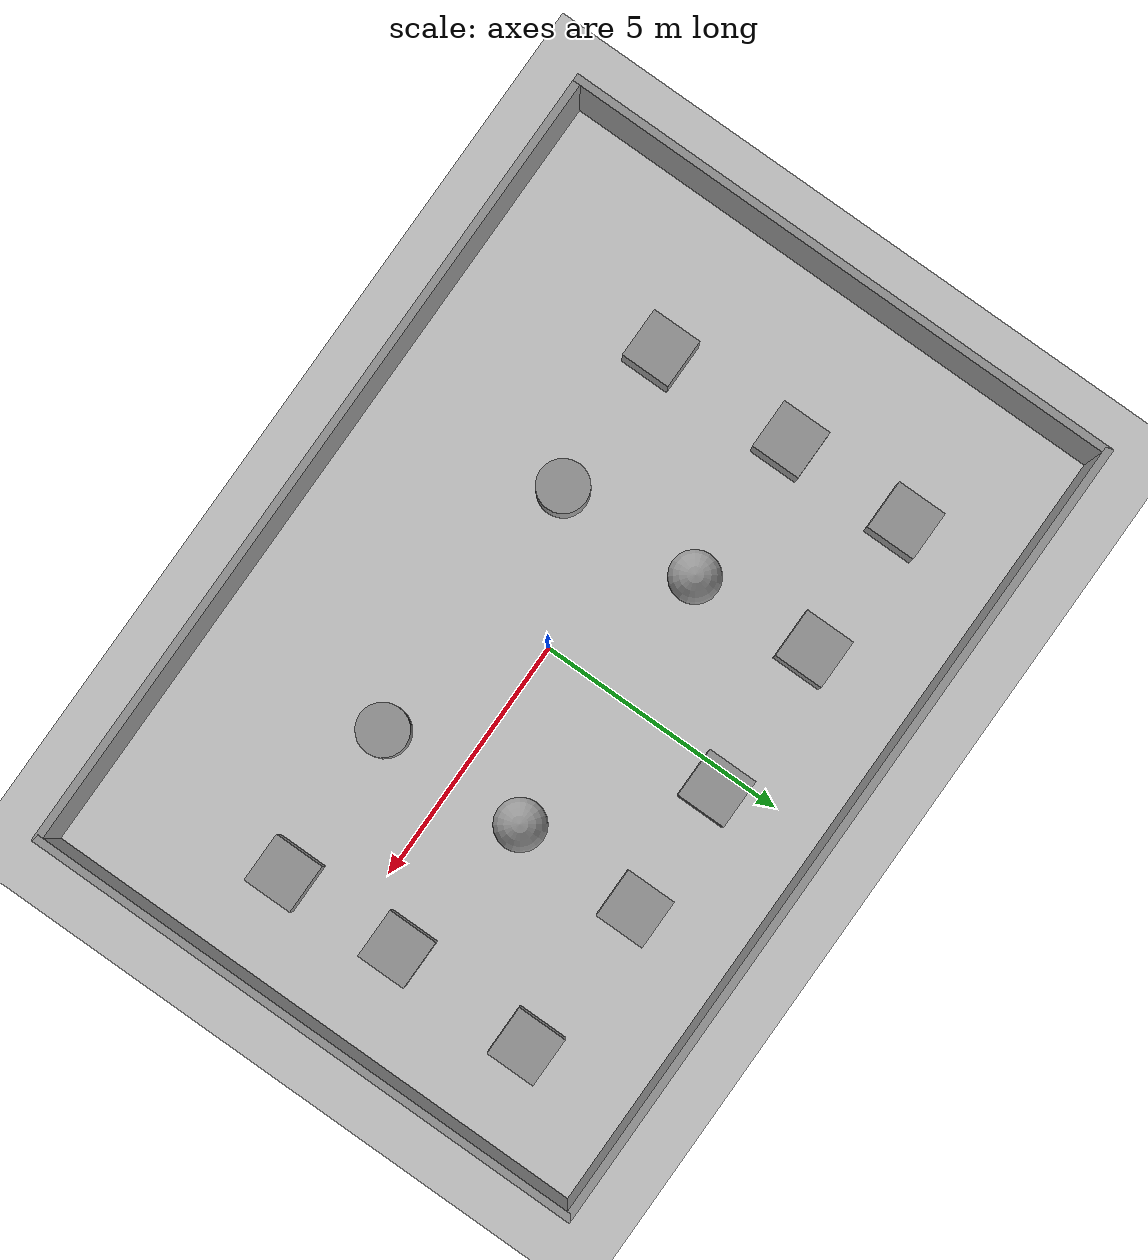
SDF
<sdf version="1.7">
 <world name="default">
  <light name="sun" type="directional">
   <pose>0 0 10 0 -0 0</pose>
   <diffuse>0.8 0.8 0.8 1</diffuse>
   <specular>0.2 0.2 0.2 1</specular>
   <attenuation>
    <range>1000</range>
    <constant>0.9</constant>
    <linear>0.01</linear>
    <quadratic>0.001</quadratic>
   </attenuation>
   <direction>-0.5 0.1 -0.9</direction>
   <spot><inner_angle>0</inner_angle><outer_angle>0</outer_angle><falloff>0</falloff></spot>
  </light>
  <model name="ground_plane">
   <static>1</static>
   <link name="link">
    <collision name="collision">
     <geometry><plane><normal>0 0 1</normal><size>100 100</size></plane></geometry>
     <surface>
      <contact><collide_bitmask>65535</collide_bitmask></contact>
      <friction><ode><mu>100</mu><mu2>50</mu2></ode></friction>
     </surface>
    </collision>
    <visual name="visual">
     <cast_shadows>0</cast_shadows>
     <geometry><plane><normal>0 0 1</normal><size>100 100</size></plane></geometry>
     <material>
      <script><uri>file://media/materials/scripts/gazebo.material</uri><name>Gazebo/Grey</name></script>
     </material>
    </visual>
   </link>
  </model>
  <gravity>0 0 -9.8</gravity>
  <magnetic_field>6e-06 2.3e-05 -4.2e-05</magnetic_field>
  <atmosphere type="adiabatic"/>
  <physics type="ode">
   <max_step_size>0.001</max_step_size>
   <real_time_factor>1</real_time_factor>
   <real_time_update_rate>1000</real_time_update_rate>
  </physics>
  <scene><ambient>0.4 0.4 0.4 1</ambient><background>0.7 0.7 0.7 1</background><shadows>1</shadows></scene>
  <audio><device>default</device></audio>
  <spherical_coordinates>
   <surface_model>EARTH_WGS84</surface_model>
   <latitude_deg>0</latitude_deg>
   <longitude_deg>0</longitude_deg>
   <elevation>0</elevation>
   <heading_deg>0</heading_deg>
  </spherical_coordinates>
  <model name="test">
   <pose>-0.20985 0.39088 0 0 -0 0</pose>
   <link name="Wall_10">
    <collision name="Wall_10_Collision">
     <geometry><box><size>16.5 0.15 2.5</size></box></geometry>
     <pose>0 0 1.25 0 -0 0</pose>
    </collision>
    <visual name="Wall_10_Visual">
     <pose>0 0 1.25 0 -0 0</pose>
     <geometry><box><size>16.5 0.15 2.5</size></box></geometry>
     <material>
      <script><uri>file://media/materials/scripts/gazebo.material</uri><name>Gazebo/Grey</name></script>
      <ambient>1 1 1 1</ambient>
     </material>
     <meta><layer>0</layer></meta>
    </visual>
    <pose>0 5.675 0 0 -0 3.14159</pose>
   </link>
   <link name="Wall_11">
    <collision name="Wall_11_Collision">
     <geometry><box><size>11.5 0.15 2.5</size></box></geometry>
     <pose>0 0 1.25 0 -0 0</pose>
    </collision>
    <visual name="Wall_11_Visual">
     <pose>0 0 1.25 0 -0 0</pose>
     <geometry><box><size>11.5 0.15 2.5</size></box></geometry>
     <material>
      <script><uri>file://media/materials/scripts/gazebo.material</uri><name>Gazebo/Grey</name></script>
      <ambient>1 1 1 1</ambient>
     </material>
     <meta><layer>0</layer></meta>
    </visual>
    <pose>-8.175 0 0 0 -0 -1.5708</pose>
   </link>
   <link name="Wall_8">
    <collision name="Wall_8_Collision">
     <geometry><box><size>16.5 0.15 2.5</size></box></geometry>
     <pose>0 0 1.25 0 -0 0</pose>
    </collision>
    <visual name="Wall_8_Visual">
     <pose>0 0 1.25 0 -0 0</pose>
     <geometry><box><size>16.5 0.15 2.5</size></box></geometry>
     <material>
      <script><uri>file://media/materials/scripts/gazebo.material</uri><name>Gazebo/Grey</name></script>
      <ambient>1 1 1 1</ambient>
     </material>
     <meta><layer>0</layer></meta>
    </visual>
    <pose>0 -5.675 0 0 -0 0</pose>
   </link>
   <link name="Wall_9">
    <collision name="Wall_9_Collision">
     <geometry><box><size>11.5 0.15 2.5</size></box></geometry>
     <pose>0 0 1.25 0 -0 0</pose>
    </collision>
    <visual name="Wall_9_Visual">
     <pose>0 0 1.25 0 -0 0</pose>
     <geometry><box><size>11.5 0.15 2.5</size></box></geometry>
     <material>
      <script><uri>file://media/materials/scripts/gazebo.material</uri><name>Gazebo/Grey</name></script>
      <ambient>1 1 1 1</ambient>
     </material>
     <meta><layer>0</layer></meta>
    </visual>
    <pose>8.175 0 0 0 -0 1.5708</pose>
   </link>
   <static>1</static>
  </model>
  <model name="unit_box">
   <pose>-5.51687 3.9165 0.499995 0 1e-05 0</pose>
   <link name="link">
    <inertial>
     <mass>1</mass>
     <inertia>
      <ixx>0.166667</ixx>
      <ixy>0</ixy>
      <ixz>0</ixz>
      <iyy>0.166667</iyy>
      <iyz>0</iyz>
      <izz>0.166667</izz>
     </inertia>
    </inertial>
    <collision name="collision"><geometry><box><size>1 1 1</size></box></geometry></collision>
    <visual name="visual">
     <geometry><box><size>1 1 1</size></box></geometry>
     <material>
      <script><name>Gazebo/Grey</name><uri>file://media/materials/scripts/gazebo.material</uri></script>
     </material>
    </visual>
   </link>
  </model>
  <model name="unit_box_0">
   <pose>-2.69166 3.89853 0.499995 -1e-05 -0 -0</pose>
   <link name="link">
    <inertial>
     <mass>1</mass>
     <inertia>
      <ixx>0.166667</ixx>
      <ixy>0</ixy>
      <ixz>0</ixz>
      <iyy>0.166667</iyy>
      <iyz>0</iyz>
      <izz>0.166667</izz>
     </inertia>
    </inertial>
    <collision name="collision"><geometry><box><size>1 1 1</size></box></geometry></collision>
    <visual name="visual">
     <geometry><box><size>1 1 1</size></box></geometry>
     <material>
      <script><name>Gazebo/Grey</name><uri>file://media/materials/scripts/gazebo.material</uri></script>
     </material>
    </visual>
   </link>
  </model>
  <model name="unit_box_1">
   <pose>0.346888 3.91183 0.499995 0 1e-05 0</pose>
   <link name="link">
    <inertial>
     <mass>1</mass>
     <inertia>
      <ixx>0.166667</ixx>
      <ixy>0</ixy>
      <ixz>0</ixz>
      <iyy>0.166667</iyy>
      <iyz>0</iyz>
      <izz>0.166667</izz>
     </inertia>
    </inertial>
    <collision name="collision"><geometry><box><size>1 1 1</size></box></geometry></collision>
    <visual name="visual">
     <geometry><box><size>1 1 1</size></box></geometry>
     <material>
      <script><name>Gazebo/Grey</name><uri>file://media/materials/scripts/gazebo.material</uri></script>
     </material>
    </visual>
   </link>
  </model>
  <model name="unit_box_2">
   <pose>2.93791 3.96292 0.499995 -1e-05 -0 -0</pose>
   <link name="link">
    <inertial>
     <mass>1</mass>
     <inertia>
      <ixx>0.166667</ixx>
      <ixy>0</ixy>
      <ixz>0</ixz>
      <iyy>0.166667</iyy>
      <iyz>0</iyz>
      <izz>0.166667</izz>
     </inertia>
    </inertial>
    <collision name="collision"><geometry><box><size>1 1 1</size></box></geometry></collision>
    <visual name="visual">
     <geometry><box><size>1 1 1</size></box></geometry>
     <material>
      <script><name>Gazebo/Grey</name><uri>file://media/materials/scripts/gazebo.material</uri></script>
     </material>
    </visual>
   </link>
  </model>
  <model name="unit_box_3">
   <pose>6.05176 3.79122 0.499995 0 1e-05 0</pose>
   <link name="link">
    <inertial>
     <mass>1</mass>
     <inertia>
      <ixx>0.166667</ixx>
      <ixy>0</ixy>
      <ixz>0</ixz>
      <iyy>0.166667</iyy>
      <iyz>0</iyz>
      <izz>0.166667</izz>
     </inertia>
    </inertial>
    <collision name="collision"><geometry><box><size>1 1 1</size></box></geometry></collision>
    <visual name="visual">
     <geometry><box><size>1 1 1</size></box></geometry>
     <material>
      <script><name>Gazebo/Grey</name><uri>file://media/materials/scripts/gazebo.material</uri></script>
     </material>
    </visual>
   </link>
  </model>
  <model name="unit_box_4">
   <pose>-5.51886 1.39953 0.499995 -1e-05 -0 -0</pose>
   <link name="link">
    <inertial>
     <mass>1</mass>
     <inertia>
      <ixx>0.166667</ixx>
      <ixy>0</ixy>
      <ixz>0</ixz>
      <iyy>0.166667</iyy>
      <iyz>0</iyz>
      <izz>0.166667</izz>
     </inertia>
    </inertial>
    <collision name="collision"><geometry><box><size>1 1 1</size></box></geometry></collision>
    <visual name="visual">
     <geometry><box><size>1 1 1</size></box></geometry>
     <material>
      <script><name>Gazebo/Grey</name><uri>file://media/materials/scripts/gazebo.material</uri></script>
     </material>
    </visual>
   </link>
  </model>
  <model name="unit_box_5">
   <pose>-5.51189 -1.44401 0.499995 0 1e-05 0</pose>
   <link name="link">
    <inertial>
     <mass>1</mass>
     <inertia>
      <ixx>0.166667</ixx>
      <ixy>0</ixy>
      <ixz>0</ixz>
      <iyy>0.166667</iyy>
      <iyz>0</iyz>
      <izz>0.166667</izz>
     </inertia>
    </inertial>
    <collision name="collision"><geometry><box><size>1 1 1</size></box></geometry></collision>
    <visual name="visual">
     <geometry><box><size>1 1 1</size></box></geometry>
     <material>
      <script><name>Gazebo/Grey</name><uri>file://media/materials/scripts/gazebo.material</uri></script>
     </material>
    </visual>
   </link>
  </model>
  <model name="unit_box_6">
   <pose>5.97488 0.914149 0.499995 -1e-05 -0 -0</pose>
   <link name="link">
    <inertial>
     <mass>1</mass>
     <inertia>
      <ixx>0.166667</ixx>
      <ixy>0</ixy>
      <ixz>0</ixz>
      <iyy>0.166667</iyy>
      <iyz>0</iyz>
      <izz>0.166667</izz>
     </inertia>
    </inertial>
    <collision name="collision"><geometry><box><size>1 1 1</size></box></geometry></collision>
    <visual name="visual">
     <geometry><box><size>1 1 1</size></box></geometry>
     <material>
      <script><name>Gazebo/Grey</name><uri>file://media/materials/scripts/gazebo.material</uri></script>
     </material>
    </visual>
   </link>
  </model>
  <model name="unit_box_7">
   <pose>6.0411 -1.51909 0.499995 0 1e-05 0</pose>
   <link name="link">
    <inertial>
     <mass>1</mass>
     <inertia>
      <ixx>0.166667</ixx>
      <ixy>0</ixy>
      <ixz>0</ixz>
      <iyy>0.166667</iyy>
      <iyz>0</iyz>
      <izz>0.166667</izz>
     </inertia>
    </inertial>
    <collision name="collision"><geometry><box><size>1 1 1</size></box></geometry></collision>
    <visual name="visual">
     <geometry><box><size>1 1 1</size></box></geometry>
     <material>
      <script><name>Gazebo/Grey</name><uri>file://media/materials/scripts/gazebo.material</uri></script>
     </material>
    </visual>
   </link>
  </model>
  <model name="unit_sphere">
   <pose>-2.54303 1.40956 0.5 0 -0 0</pose>
   <link name="link">
    <inertial>
     <mass>1</mass>
     <inertia><ixx>0.1</ixx><ixy>0</ixy><ixz>0</ixz><iyy>0.1</iyy><iyz>0</iyz><izz>0.1</izz></inertia>
    </inertial>
    <collision name="collision"><geometry><sphere><radius>0.5</radius></sphere></geometry></collision>
    <visual name="visual">
     <geometry><sphere><radius>0.5</radius></sphere></geometry>
     <material>
      <script><name>Gazebo/Grey</name><uri>file://media/materials/scripts/gazebo.material</uri></script>
     </material>
    </visual>
   </link>
  </model>
  <model name="unit_sphere_0">
   <pose>2.90229 1.42298 0.5 0 -0 0</pose>
   <link name="link">
    <inertial>
     <mass>1</mass>
     <inertia><ixx>0.1</ixx><ixy>0</ixy><ixz>0</ixz><iyy>0.1</iyy><iyz>0</iyz><izz>0.1</izz></inertia>
    </inertial>
    <collision name="collision"><geometry><sphere><radius>0.5</radius></sphere></geometry></collision>
    <visual name="visual">
     <geometry><sphere><radius>0.5</radius></sphere></geometry>
     <material>
      <script><name>Gazebo/Grey</name><uri>file://media/materials/scripts/gazebo.material</uri></script>
     </material>
    </visual>
   </link>
  </model>
  <model name="unit_cylinder">
   <pose>-2.47641 -1.44539 0.499993 -3e-06 -4e-06 -0</pose>
   <link name="link">
    <inertial>
     <mass>1</mass>
     <inertia><ixx>0.145833</ixx><ixy>0</ixy><ixz>0</ixz><iyy>0.145833</iyy><iyz>0</iyz><izz>0.125</izz></inertia>
    </inertial>
    <collision name="collision">
     <geometry><cylinder><radius>0.5</radius><length>1</length></cylinder></geometry>
    </collision>
    <visual name="visual">
     <geometry><cylinder><radius>0.5</radius><length>1</length></cylinder></geometry>
     <material>
      <script><name>Gazebo/Grey</name><uri>file://media/materials/scripts/gazebo.material</uri></script>
     </material>
    </visual>
   </link>
  </model>
  <model name="unit_cylinder_0">
   <pose>2.94005 -1.5511 0.499997 3e-06 4e-06 -0</pose>
   <link name="link">
    <inertial>
     <mass>1</mass>
     <inertia><ixx>0.145833</ixx><ixy>0</ixy><ixz>0</ixz><iyy>0.145833</iyy><iyz>0</iyz><izz>0.125</izz></inertia>
    </inertial>
    <collision name="collision">
     <geometry><cylinder><radius>0.5</radius><length>1</length></cylinder></geometry>
    </collision>
    <visual name="visual">
     <geometry><cylinder><radius>0.5</radius><length>1</length></cylinder></geometry>
     <material>
      <script><name>Gazebo/Grey</name><uri>file://media/materials/scripts/gazebo.material</uri></script>
     </material>
    </visual>
   </link>
  </model>
 </world>
</sdf>
